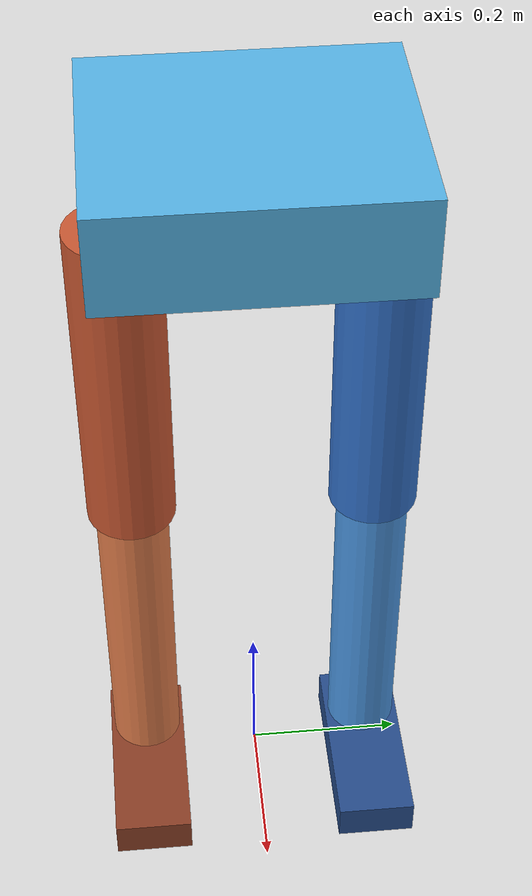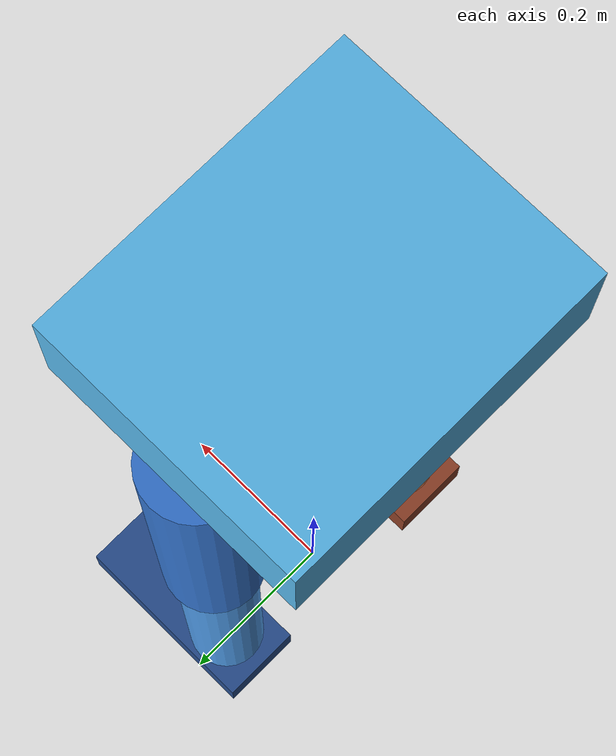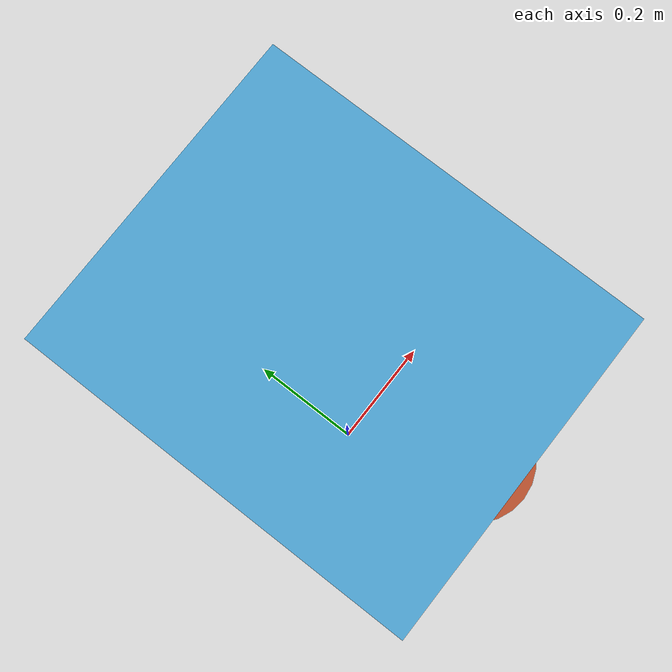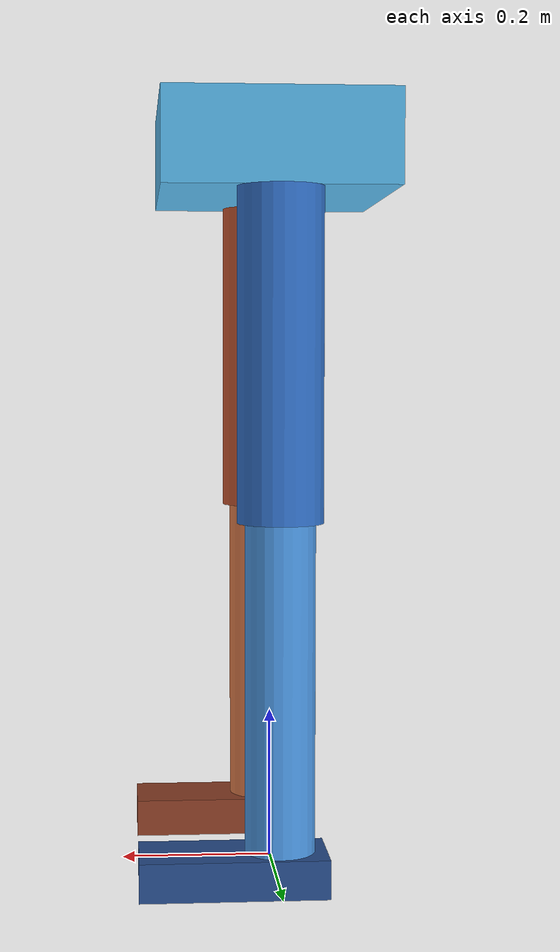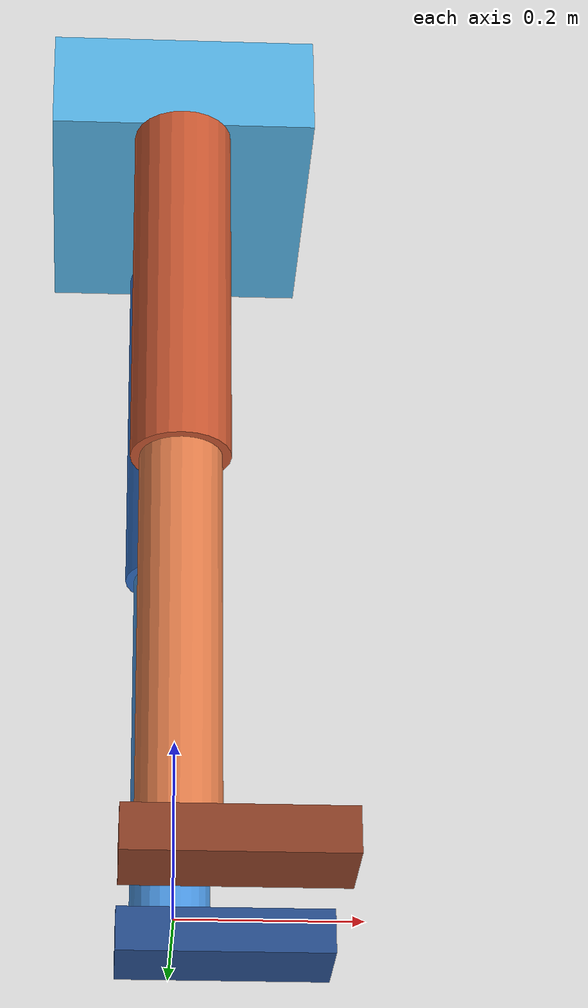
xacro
<?xml version="1.0"?>
<robot name="rehab_exo" xmlns:xacro="http://www.ros.org/wiki/xacro">

  <!-- ===== Parametri ===== -->
  <xacro:property name="hip_half_width" value="0.15"/>
  <xacro:property name="thigh_len" value="0.42"/>
  <xacro:property name="thigh_r"   value="0.055"/>
  <xacro:property name="thigh_m"   value="4.0"/>
  <xacro:property name="shank_len" value="0.42"/>
  <xacro:property name="shank_r"   value="0.045"/>
  <xacro:property name="shank_m"   value="3.0"/>
  <xacro:property name="j_lower" value="0.0"/>
  <xacro:property name="j_upper" value="3.14159"/>
  <xacro:property name="j_eff"   value="120.0"/>
  <xacro:property name="j_vel"   value="2.0"/>

  <!-- ===== Macro: o articulatie revoluta sagitala ===== -->
  <xacro:macro name="rev_joint" params="name parent child x y z">
    <joint name="${name}" type="revolute">
      <parent link="${parent}"/>
      <child link="${child}"/>
      <origin xyz="${x} ${y} ${z}" rpy="0 0 0"/>
      <axis xyz="0 1 0"/>
      <limit lower="${j_lower}" upper="${j_upper}" effort="${j_eff}" velocity="${j_vel}"/>
      <dynamics damping="2.0" friction="1.0"/>
    </joint>
  </xacro:macro>

  <!-- ===== Macro: un picior complet (coapsa+gamba+laba) ===== -->
  <xacro:macro name="leg" params="side y_off col">
    <xacro:rev_joint name="${side}_hip_joint" parent="base_link" child="${side}_thigh"
                     x="0" y="${y_off}" z="-0.06"/>
    <link name="${side}_thigh">
      <inertial><origin xyz="0 0 ${-thigh_len/2}"/><mass value="${thigh_m}"/>
        <inertia ixx="0.06" ixy="0" ixz="0" iyy="0.06" iyz="0" izz="0.006"/></inertial>
      <visual><origin xyz="0 0 ${-thigh_len/2}"/>
        <geometry><cylinder radius="${thigh_r}" length="${thigh_len}"/></geometry>
        <material name="${col}_thigh"/></visual>
      <collision><origin xyz="0 0 ${-thigh_len/2}"/>
        <geometry><cylinder radius="${thigh_r}" length="${thigh_len}"/></geometry></collision>
    </link>
    <xacro:rev_joint name="${side}_knee_joint" parent="${side}_thigh" child="${side}_shank"
                     x="0" y="0" z="${-thigh_len}"/>
    <link name="${side}_shank">
      <inertial><origin xyz="0 0 ${-shank_len/2}"/><mass value="${shank_m}"/>
        <inertia ixx="0.045" ixy="0" ixz="0" iyy="0.045" iyz="0" izz="0.003"/></inertial>
      <visual><origin xyz="0 0 ${-shank_len/2}"/>
        <geometry><cylinder radius="${shank_r}" length="${shank_len}"/></geometry>
        <material name="${col}_shank"/></visual>
      <collision><origin xyz="0 0 ${-shank_len/2}"/>
        <geometry><cylinder radius="${shank_r}" length="${shank_len}"/></geometry></collision>
    </link>
    <xacro:rev_joint name="${side}_ankle_joint" parent="${side}_shank" child="${side}_foot"
                     x="0" y="0" z="${-shank_len}"/>
    <link name="${side}_foot">
      <inertial><origin xyz="0.06 0 -0.025"/><mass value="1.0"/>
        <inertia ixx="0.001" ixy="0" ixz="0" iyy="0.005" iyz="0" izz="0.005"/></inertial>
      <visual><origin xyz="0.06 0 -0.025"/>
        <geometry><box size="0.24 0.10 0.05"/></geometry>
        <material name="${col}_foot"/></visual>
      <collision><origin xyz="0.06 0 -0.025"/>
        <geometry><box size="0.24 0.10 0.05"/></geometry></collision>
    </link>
  </xacro:macro>

  <!-- ===== Materiale ===== -->
  <material name="blue_thigh"><color rgba="0.20 0.45 0.80 1"/></material>
  <material name="blue_shank"><color rgba="0.30 0.60 0.90 1"/></material>
  <material name="blue_foot"><color rgba="0.15 0.30 0.55 1"/></material>
  <material name="red_thigh"><color rgba="0.80 0.35 0.20 1"/></material>
  <material name="red_shank"><color rgba="0.90 0.50 0.30 1"/></material>
  <material name="red_foot"><color rgba="0.55 0.25 0.15 1"/></material>

  <!-- ===== Structura ===== -->
  <link name="world"/>
  <joint name="world_to_base" type="fixed">
    <parent link="world"/><child link="base_link"/>
    <origin xyz="0 0 0.95" rpy="0 0 0"/>
  </joint>

  <link name="base_link">
    <inertial><mass value="8.0"/>
      <inertia ixx="0.10" ixy="0" ixz="0" iyy="0.07" iyz="0" izz="0.15"/></inertial>
    <visual><geometry><box size="0.30 0.36 0.12"/></geometry></visual>
    <collision><geometry><box size="0.30 0.36 0.12"/></geometry></collision>
  </link>

  <xacro:leg side="left"  y_off="${hip_half_width}"  col="blue"/>
  <xacro:leg side="right" y_off="${-hip_half_width}" col="red"/>

  <!-- ===== ros2_control + plugin Gazebo (gz) ===== -->
  <ros2_control name="RehabExoSystem" type="system">
    <hardware>
      <plugin>gz_ros2_control/GazeboSimSystem</plugin>
    </hardware>
    <xacro:macro name="ctrl_joint" params="name">
      <joint name="${name}">
        <command_interface name="position">
          <param name="min">${j_lower}</param>
          <param name="max">${j_upper}</param>
        </command_interface>
        <state_interface name="position"/>
        <state_interface name="velocity"/>
        <state_interface name="effort"/>
      </joint>
    </xacro:macro>
    <xacro:ctrl_joint name="left_hip_joint"/>
    <xacro:ctrl_joint name="left_knee_joint"/>
    <xacro:ctrl_joint name="left_ankle_joint"/>
    <xacro:ctrl_joint name="right_hip_joint"/>
    <xacro:ctrl_joint name="right_knee_joint"/>
    <xacro:ctrl_joint name="right_ankle_joint"/>
  </ros2_control>

  <gazebo>
    <plugin filename="gz_ros2_control-system" name="gz_ros2_control::GazeboSimROS2ControlPlugin">
      <parameters>$(find rehab_exo_description)/config/controllers.yaml</parameters>
    </plugin>
  </gazebo>

</robot>
